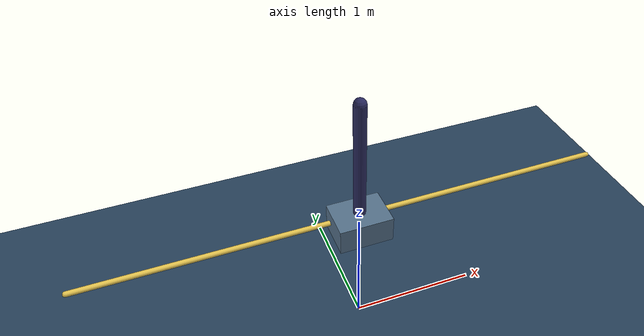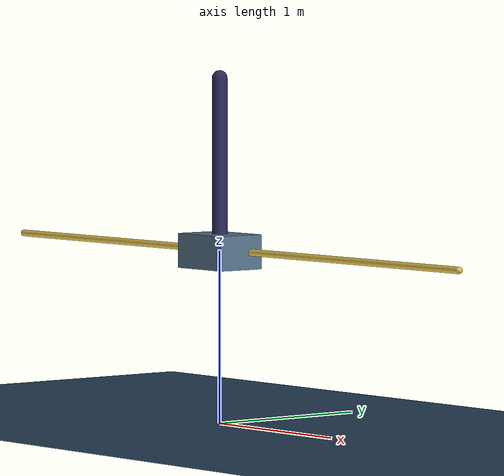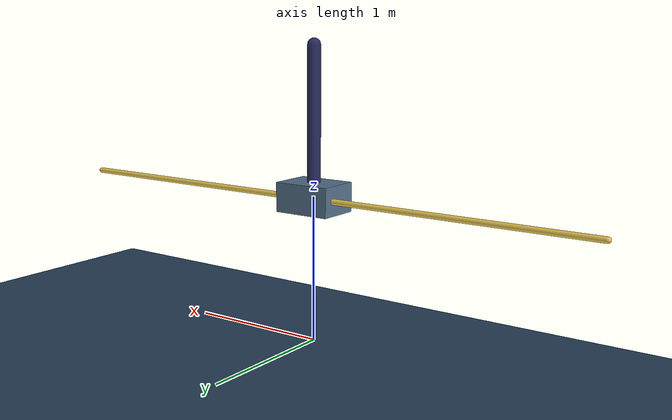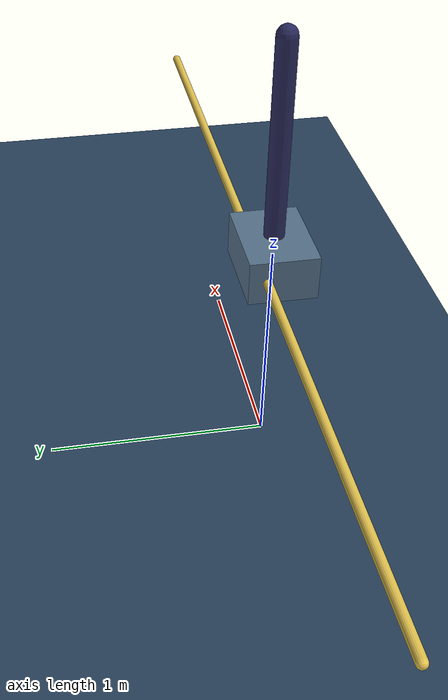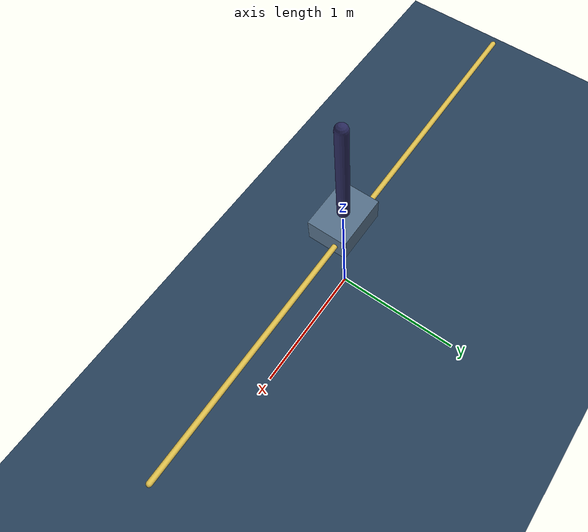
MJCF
<mujoco model="cart-pole">
  <include file="./common/skybox.xml"/>
  <include file="./common/visual.xml"/>
  <include file="./common/materials.xml"/>

  <option timestep="0.01" integrator="RK4">
    <flag contact="disable" energy="enable"/>
  </option>

  <default>
    <default class="pole">
      <joint type="hinge" axis="0 1 0"  damping="2e-6"/>
      <geom type="capsule" fromto="0 0 0 0 0 1" size="0.045" material="self" mass=".1"/>
    </default>
  </default>

  <worldbody>
    <light name="light" pos="0 0 6"/>
    <camera name="fixed" pos="0 -4 1" zaxis="0 -1 0"/>
    <camera name="lookatcart" mode="targetbody" target="cart" pos="0 -2 2"/>
    <geom name="floor" pos="0 0 -.05" size="4 4 .2" type="plane" material="grid"/>
    <geom name="rail1" type="capsule" pos="0  .07 1" zaxis="1 0 0" size="0.02 2" material="decoration" />
    <body name="cart" pos="0 0 1">
      <joint name="slider" type="slide" limited="true" axis="1 0 0" range="-1.8 1.8" solreflimit=".08 1" damping="5e-4"/>
      <geom name="cart" type="box" size="0.2 0.15 0.1" material="self"  mass="1"/>
      <body name="pole_1" childclass="pole">
        <joint name="hinge_1"/>
        <geom name="pole_1" material="self2"/>
      </body>
    </body>
  </worldbody>

  <actuator>
    <motor name="slide" joint="slider" gear="10" ctrllimited="true" ctrlrange="-1 1" />
  </actuator>
</mujoco>

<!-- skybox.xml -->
<mujoco>
  <asset>
      <texture name="skybox" type="skybox" builtin="gradient" rgb1=".4 .6 .8" rgb2="0 0 0"
               width="800" height="800" mark="random" markrgb="1 1 1"/>
  </asset>
</mujoco>

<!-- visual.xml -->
<mujoco>
  <visual>
    <headlight ambient=".4 .4 .4" diffuse=".8 .8 .8" specular="0.1 0.1 0.1"/>
    <map znear=".01"/>
    <quality shadowsize="2048"/>
  </visual>
</mujoco>

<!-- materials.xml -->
<!--
Common textures, colors and materials to be used throughout this suite. Some
materials such as xxx_highlight are activated on occurence of certain events,
for example receiving a positive reward.
-->
<mujoco>
  <asset>
    <texture name="grid" type="2d" builtin="checker" rgb1=".1 .2 .3" rgb2=".2 .3 .4" width="300" height="300" mark="edge" markrgb=".2 .3 .4"/>
    <material name="grid" texture="grid" texrepeat="1 1" texuniform="true" reflectance=".2"/>
    <material name="self" rgba="0.33493447 0.44319897 0.54274483 1"/>
    <material name="self2" rgba="0.16 0.16 0.36 1"/>
    <material name="self_default" rgba=".7 .5 .3 1"/>
    <material name="self_highlight" rgba="0 .5 .3 1"/>
    <material name="effector" rgba=".7 .4 .2 1"/>
    <material name="effector_default" rgba=".7 .4 .2 1"/>
    <material name="effector_highlight" rgba="0 .5 .3 1"/>
    <material name="decoration" rgba="0.890625 0.765625 0.30859375 1"/>
    <material name="eye" rgba="0 .2 1 1"/>
    <material name="target" rgba=".6 .3 .3 1"/>
    <material name="target_default" rgba=".6 .3 .3 1"/>
    <material name="target_highlight" rgba=".6 .3 .3 .4"/>
    <material name="site" rgba=".5 .5 .5 .3"/>
  </asset>
</mujoco>
